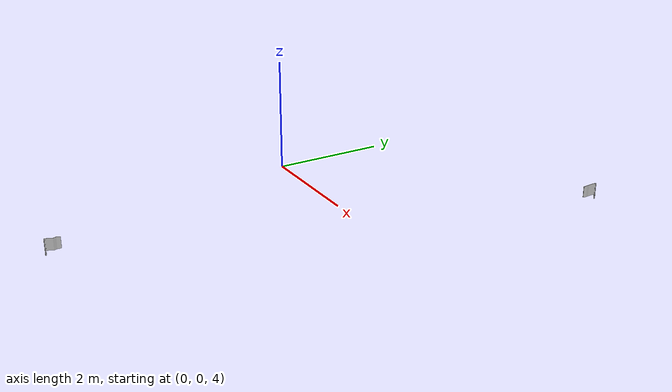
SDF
<?xml version="1.0"?>
<sdf version="1.6">
  <model name="new_flags">
    <static>true</static>
    <link name="flags_link">
      <visual name="visual_flags">
        <cast_shadows>true</cast_shadows>
        <geometry>
          <mesh>
            <uri>model://cbrFlag/meshes/flags.dae</uri>
          </mesh>
        </geometry>
        <material>
          <script>
            <uri>model://cbrFlag/materials/scripts</uri>
            <uri>model://cbrFlag/materials/textures</uri>
            <name>flags/color</name>
          </script>
        </material>
      </visual>
      <collision name="collision_flags">
        <geometry>
          <mesh>
            <uri>model://cbrFlag/meshes/flags.dae</uri>
          </mesh>
        </geometry>
      </collision>
    </link>
  </model>
</sdf>
